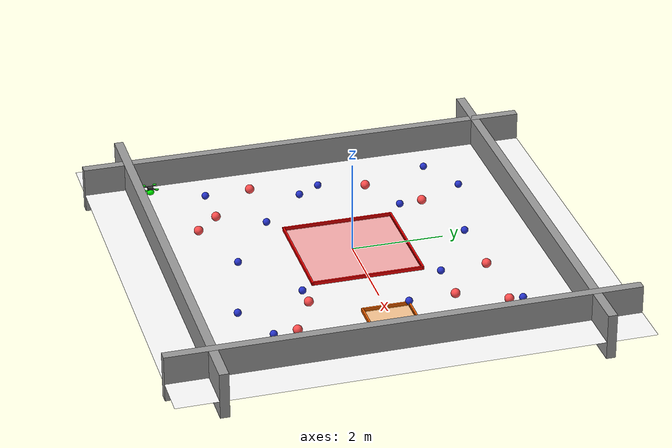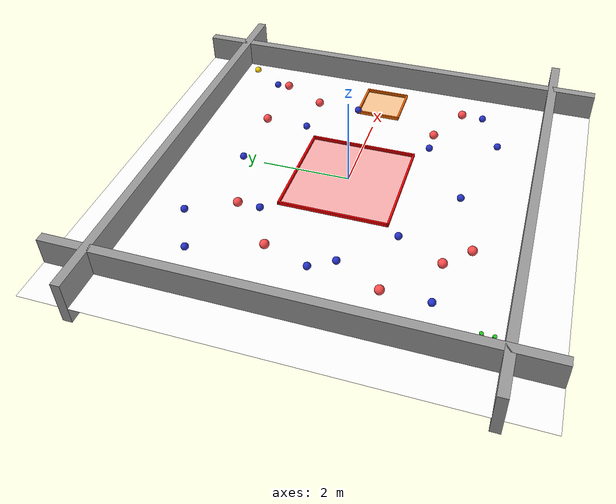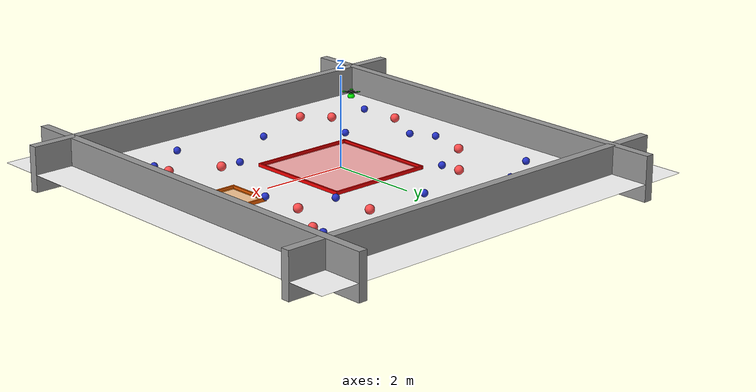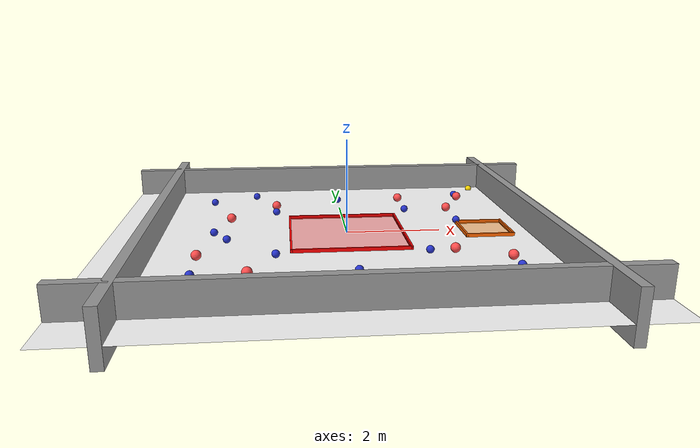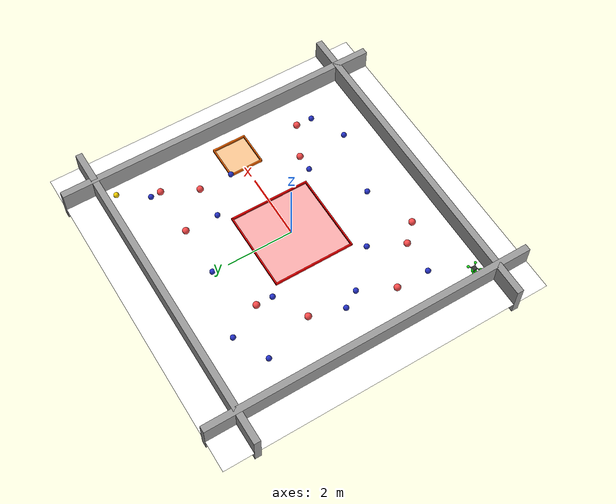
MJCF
<mujoco>
  <option gravity="0 0 -50" integrator="RK4" timestep="0.01"/>
  <visual><map znear="0.01"/></visual>

  <asset>
    <texture name="grid" type="2d" builtin="checker" width="512" height="512"
             rgb1="0.8 0.8 0.8" rgb2="1 1 1"/>
    <material name="grid_mat" texture="grid" texrepeat="10 10" reflectance="0.2"/>
    <material name="nfz_mat" rgba="1 0.15 0.15 0.35"/>
    <material name="nfz2_mat" rgba="1 0.5 0.0 0.4"/>
    <material name="drone_body_mat" rgba="0.2 0.2 0.2 1"/>
    <material name="drone_arm_mat" rgba="0.4 0.4 0.4 1"/>
    <material name="drone_prop_mat" rgba="0.1 0.8 0.1 0.9"/>
  </asset>

  <default>
    <geom friction="1 0.01 0.001" solref="0.02 1" solimp="0.9 0.95 0.001"/>
    <site type="sphere" size="0.08"/>
    <default class="dynamic">
      <geom type="sphere" size="0.1" rgba="1 0.3 0.3 1"/>
    </default>
    <default class="static">
      <geom type="sphere" size="0.08" rgba="0.15 0.2 0.8 1"/>
    </default>
  </default>

  <worldbody>
    <camera name="top" pos="0 0 10" xyaxes="1 0 0 0 1 0"/>

    <!-- Floor + walls -->
    <geom name="floor" type="plane" size="5 5 0.1" material="grid_mat" rgba="1 1 1 1"/>
    <geom name="wall_left"  type="box" pos="-4 0 0.1" size="0.1 5 0.5" rgba="0.6 0.6 0.6 1"/>
    <geom name="wall_right" type="box" pos="4 0 0.1"  size="0.1 5 0.5" rgba="0.6 0.6 0.6 1"/>
    <geom name="wall_top"   type="box" pos="0 4 0.1"  size="5 0.1 0.5" rgba="0.6 0.6 0.6 1"/>
    <geom name="wall_bot"   type="box" pos="0 -4 0.1" size="5 0.1 0.5" rgba="0.6 0.6 0.6 1"/>

    <!-- NFZ 1 (CENTER) -->
    <geom name="nfz1_floor" type="box" pos="0 0 0.005" size="1.2 1.2 0.005"
          material="nfz_mat" contype="0" conaffinity="0"/>
    <geom name="nfz1_border_left"   type="box" pos="-1.2 0 0.02" size="0.02 1.22 0.04"
          rgba="1 0 0 0.9" contype="0" conaffinity="0"/>
    <geom name="nfz1_border_right"  type="box" pos="1.2 0 0.02"  size="0.02 1.22 0.04"
          rgba="1 0 0 0.9" contype="0" conaffinity="0"/>
    <geom name="nfz1_border_top"    type="box" pos="0 1.2 0.02"  size="1.22 0.02 0.04"
          rgba="1 0 0 0.9" contype="0" conaffinity="0"/>
    <geom name="nfz1_border_bottom" type="box" pos="0 -1.2 0.02" size="1.22 0.02 0.04"
          rgba="1 0 0 0.9" contype="0" conaffinity="0"/>

    <!-- NFZ 2 (RIGHT SIDE) -->
    <geom name="nfz2_floor" type="box" pos="3.0 0.0 0.005" size="0.5 0.5 0.005"
          material="nfz2_mat" contype="0" conaffinity="0"/>
    <geom name="nfz2_border_left"   type="box" pos="2.5 0.0 0.02" size="0.02 0.52 0.04"
          rgba="1 0.4 0 0.9" contype="0" conaffinity="0"/>
    <geom name="nfz2_border_right"  type="box" pos="3.5 0.0 0.02" size="0.02 0.52 0.04"
          rgba="1 0.4 0 0.9" contype="0" conaffinity="0"/>
    <geom name="nfz2_border_top"    type="box" pos="3.0 0.5 0.02" size="0.52 0.02 0.04"
          rgba="1 0.4 0 0.9" contype="0" conaffinity="0"/>
    <geom name="nfz2_border_bottom" type="box" pos="3.0 -0.5 0.02" size="0.52 0.02 0.04"
          rgba="1 0.4 0 0.9" contype="0" conaffinity="0"/>

    <!-- Start/Goal markers -->
    <site name="start" pos="-3.6 -3.6 0.02" rgba="0 1 0 1"/>
    <site name="goal"  pos=" 3.6  3.6 0.02" rgba="1 0.85 0 1"/>

    <!-- 10 DYNAMIC obstacles (cat1-cat10) - RED -->
    <body name="cat1"  pos="-3.0 -1.5 0.1"><freejoint/><geom class="dynamic"/></body>
    <body name="cat2"  pos="-2.0 -2.5 0.1"><freejoint/><geom class="dynamic"/></body>
    <body name="cat3"  pos="-1.5  2.0 0.1"><freejoint/><geom class="dynamic"/></body>
    <body name="cat4"  pos=" 2.0 -1.5 0.1"><freejoint/><geom class="dynamic"/></body>
    <body name="cat5"  pos=" 3.0 -2.0 0.1"><freejoint/><geom class="dynamic"/></body>
    <body name="cat6"  pos="-2.5  1.0 0.1"><freejoint/><geom class="dynamic"/></body>
    <body name="cat7"  pos=" 1.5  2.5 0.1"><freejoint/><geom class="dynamic"/></body>
    <body name="cat8"  pos=" 2.5  1.5 0.1"><freejoint/><geom class="dynamic"/></body>
    <body name="cat9"  pos="-1.5 -3.0 0.1"><freejoint/><geom class="dynamic"/></body>
    <body name="cat10" pos=" 3.0  2.5 0.1"><freejoint/><geom class="dynamic"/></body>

    <!-- 15 STATIC obstacles (cat11-cat25) - BLUE -->
    <body name="cat11" pos="-3.0 -2.5 0.08"><freejoint/><geom class="static"/></body>
    <body name="cat12" pos=" 3.0 -2.5 0.08"><freejoint/><geom class="static"/></body>
    <body name="cat13" pos="-3.0  2.5 0.08"><freejoint/><geom class="static"/></body>
    <body name="cat14" pos=" 3.0  2.8 0.08"><freejoint/><geom class="static"/></body>
    <body name="cat15" pos="-1.5 -1.5 0.08"><freejoint/><geom class="static"/></body>
    <body name="cat16" pos=" 1.5 -1.5 0.08"><freejoint/><geom class="static"/></body>
    <body name="cat17" pos="-1.5  1.5 0.08"><freejoint/><geom class="static"/></body>
    <body name="cat18" pos=" 1.5  1.5 0.08"><freejoint/><geom class="static"/></body>
    <body name="cat19" pos="-2.5 -0.5 0.08"><freejoint/><geom class="static"/></body>
    <body name="cat20" pos=" 2.5  0.5 0.08"><freejoint/><geom class="static"/></body>
    <body name="cat21" pos=" 0.0 -2.5 0.08"><freejoint/><geom class="static"/></body>
    <body name="cat22" pos=" 0.0  2.5 0.08"><freejoint/><geom class="static"/></body>
    <body name="cat23" pos="-2.0  3.0 0.08"><freejoint/><geom class="static"/></body>
    <body name="cat24" pos=" 2.0 -3.0 0.08"><freejoint/><geom class="static"/></body>
    <body name="cat25" pos="-2.8  0.0 0.08"><freejoint/><geom class="static"/></body>

    <!-- DRONE (replaces the green robot sphere) -->
    <!-- Drone = dark center body + 4 arms + 4 green propeller discs -->
    <body name="robot" pos="-3.6 -3.6 0.12">
      <freejoint/>
      <!-- Central body (dark box) -->
      <geom name="drone_body" type="box" size="0.06 0.06 0.02" material="drone_body_mat"/>
      <!-- Arms (4 thin cylinders at 45-degree diagonals) -->
      <geom name="drone_arm1" type="capsule" fromto="0.04 0.04 0   0.12 0.12 0" size="0.012" material="drone_arm_mat"/>
      <geom name="drone_arm2" type="capsule" fromto="-0.04 0.04 0  -0.12 0.12 0" size="0.012" material="drone_arm_mat"/>
      <geom name="drone_arm3" type="capsule" fromto="0.04 -0.04 0  0.12 -0.12 0" size="0.012" material="drone_arm_mat"/>
      <geom name="drone_arm4" type="capsule" fromto="-0.04 -0.04 0 -0.12 -0.12 0" size="0.012" material="drone_arm_mat"/>
      <!-- Propeller discs (4 green flat cylinders at arm tips) -->
      <geom name="drone_prop1" type="cylinder" pos=" 0.12  0.12 0.01" size="0.04 0.005" material="drone_prop_mat"/>
      <geom name="drone_prop2" type="cylinder" pos="-0.12  0.12 0.01" size="0.04 0.005" material="drone_prop_mat"/>
      <geom name="drone_prop3" type="cylinder" pos=" 0.12 -0.12 0.01" size="0.04 0.005" material="drone_prop_mat"/>
      <geom name="drone_prop4" type="cylinder" pos="-0.12 -0.12 0.01" size="0.04 0.005" material="drone_prop_mat"/>
    </body>
  </worldbody>
</mujoco>
